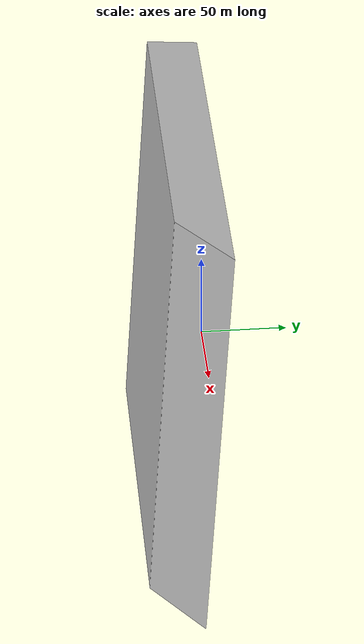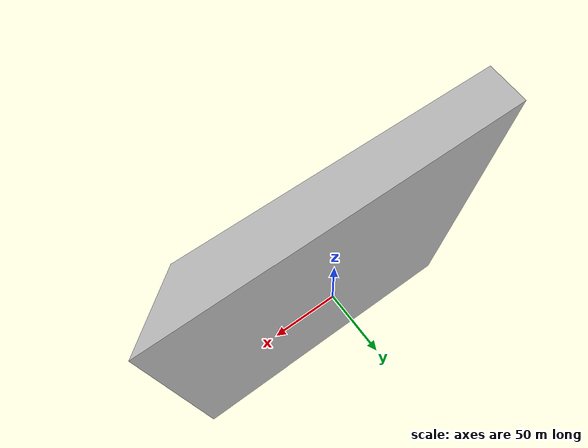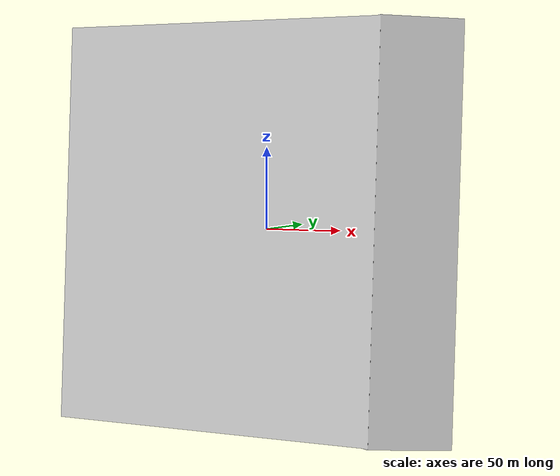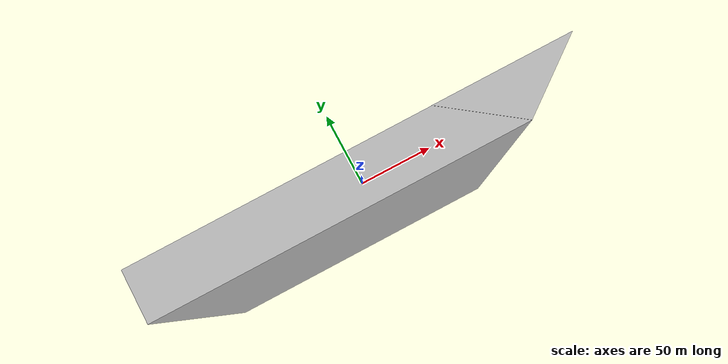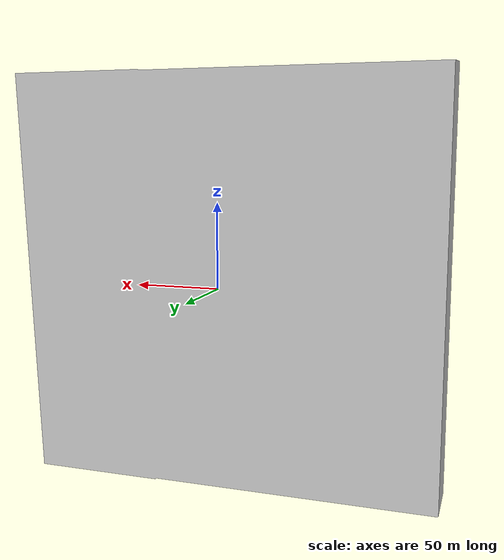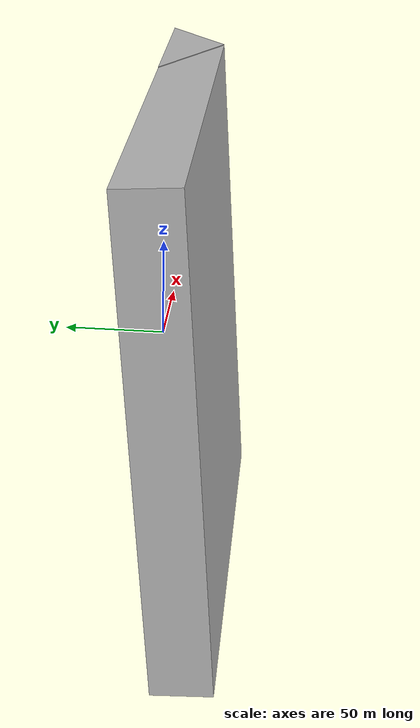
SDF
<?xml version="1.0"?>
<sdf version='1.5'>
  <model name='sloppy'>
    <pose>0 0 0 1.507 0 0</pose>
    <static>True</static>
    <link name='base'>
    	<collision name="collision">
        <geometry>
            <mesh><uri>model://sloppy/meshes/sloppy_plateau.obj</uri>
            </mesh>
          </geometry>
      </collision>
        <visual name="visual">
          <geometry>
            <mesh><uri>model://sloppy/meshes/sloppy_plateau.obj</uri>
            </mesh>
          </geometry>
        </visual>
   </link>
 </model>
</sdf>
